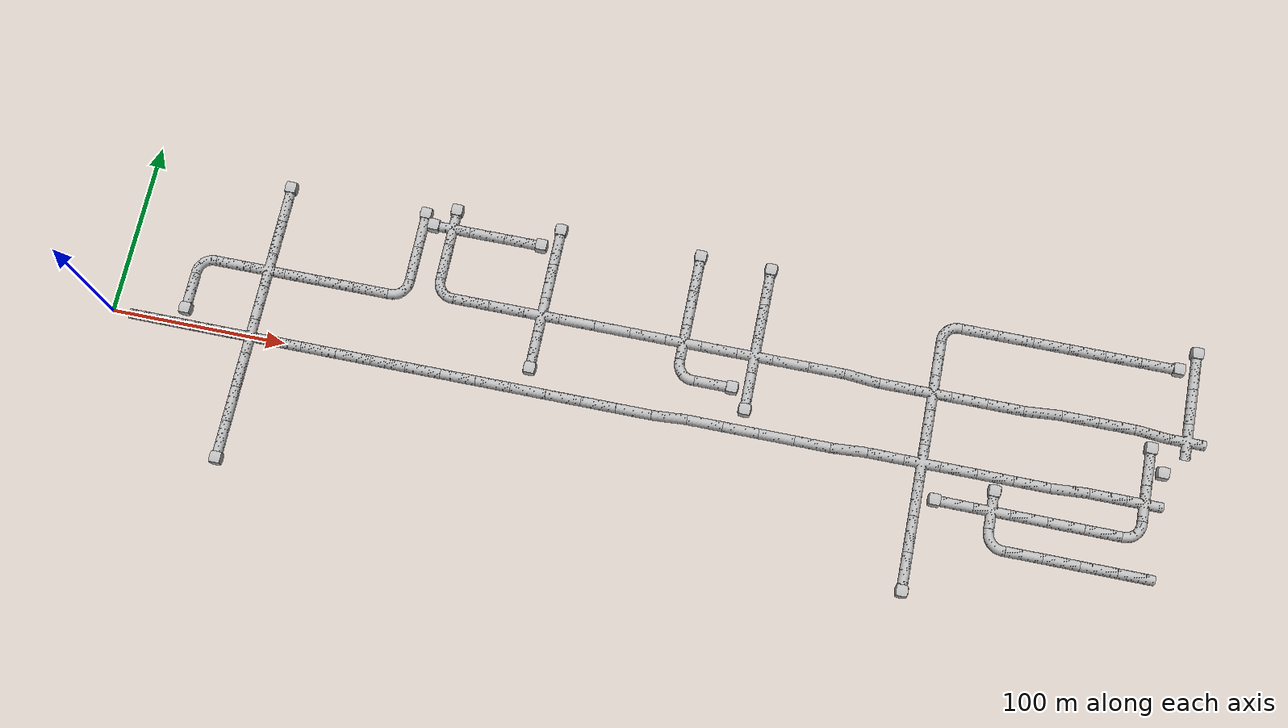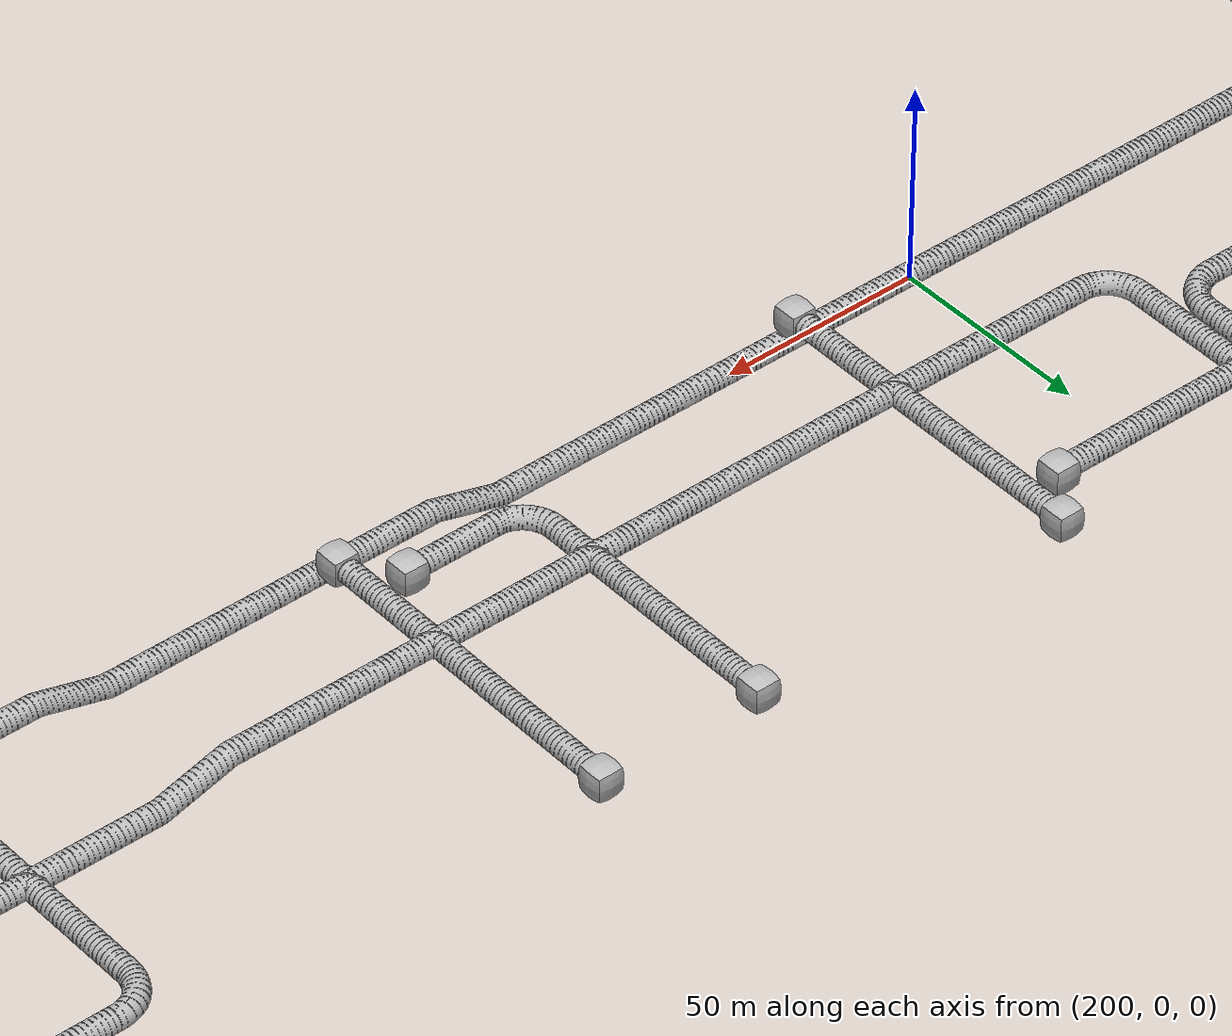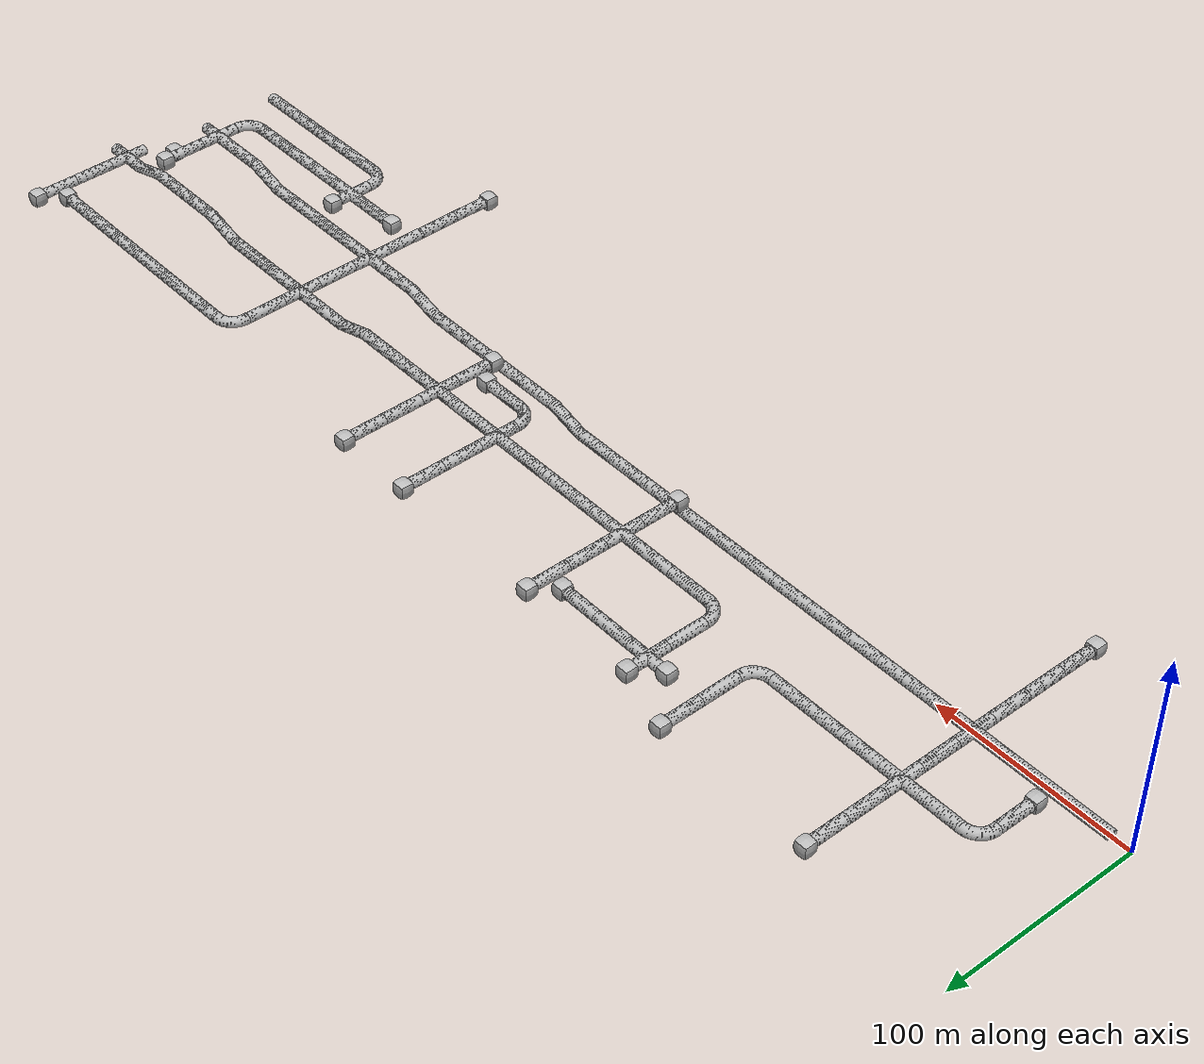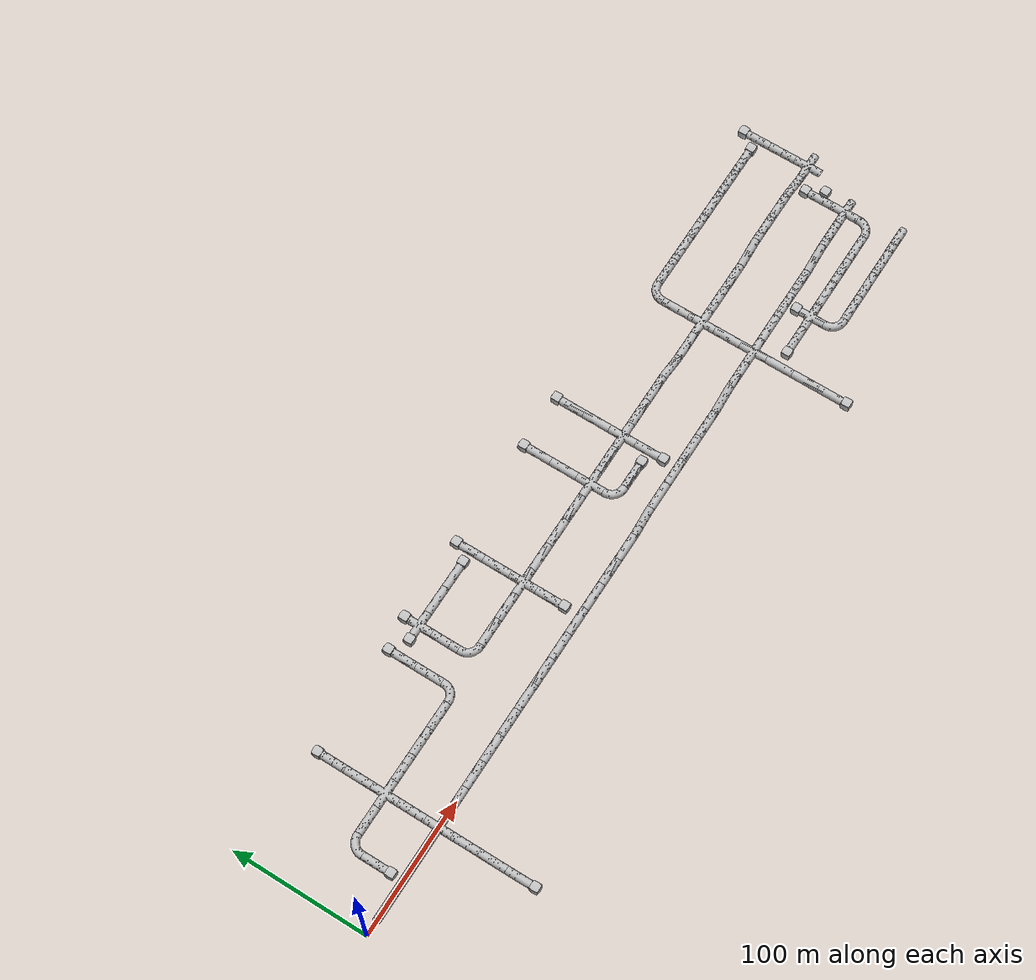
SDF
<sdf version="1.6">
 <world name="tunnel_circuit_04">
  <include><name>artifact_origin</name><pose>2 4 0.5 0 0 0</pose><uri>model://fiducial</uri></include>
  <include>
   <name>tile_1</name>
   <uri>model://tunnel_tile_5</uri>
   <pose>80.000000 80.000000 0.000000 0 0 3.141593</pose>
  </include>
  <include>
   <name>tile_2</name>
   <uri>model://tunnel_tile_blocker</uri>
   <pose>80.000000 91.000000 0.000000 0 0 0.000000</pose>
  </include>
  <include>
   <name>tile_3</name>
   <uri>model://tunnel_tile_5</uri>
   <pose>160.000000 80.000000 0.000000 0 0 3.141593</pose>
  </include>
  <include>
   <name>tile_4</name>
   <uri>model://tunnel_tile_blocker</uri>
   <pose>160.000000 91.000000 0.000000 0 0 0.000000</pose>
  </include>
  <include>
   <name>tile_5</name>
   <uri>model://tunnel_tile_1</uri>
   <pose>180.000000 80.000000 15.000000 0 0 0.000000</pose>
  </include>
  <include>
   <name>tile_6</name>
   <uri>model://tunnel_tile_blocker</uri>
   <pose>169.000000 80.000000 15.000000 0 0 0.000000</pose>
  </include>
  <include>
   <name>tile_7</name>
   <uri>model://tunnel_tile_blocker</uri>
   <pose>180.000000 91.000000 15.000000 0 0 0.000000</pose>
  </include>
  <include>
   <name>tile_8</name>
   <uri>model://tunnel_tile_5</uri>
   <pose>200.000000 80.000000 15.000000 0 0 1.570796</pose>
  </include>
  <include>
   <name>tile_9</name>
   <uri>model://tunnel_tile_5</uri>
   <pose>220.000000 80.000000 15.000000 0 0 1.570796</pose>
  </include>
  <include>
   <name>tile_10</name>
   <uri>model://tunnel_tile_blocker</uri>
   <pose>231.000000 80.000000 15.000000 0 0 0.000000</pose>
  </include>
  <include>
   <name>tile_11</name>
   <uri>model://tunnel_tile_5</uri>
   <pose>240.000000 80.000000 15.000000 0 0 3.141593</pose>
  </include>
  <include>
   <name>tile_12</name>
   <uri>model://tunnel_tile_blocker</uri>
   <pose>240.000000 91.000000 15.000000 0 0 0.000000</pose>
  </include>
  <include>
   <name>tile_13</name>
   <uri>model://tunnel_tile_5</uri>
   <pose>320.000000 80.000000 15.000000 0 0 3.141593</pose>
  </include>
  <include>
   <name>tile_14</name>
   <uri>model://tunnel_tile_blocker</uri>
   <pose>320.000000 91.000000 15.000000 0 0 0.000000</pose>
  </include>
  <include>
   <name>tile_15</name>
   <uri>model://tunnel_tile_5</uri>
   <pose>360.000000 80.000000 15.000000 0 0 3.141593</pose>
  </include>
  <include>
   <name>tile_16</name>
   <uri>model://tunnel_tile_blocker</uri>
   <pose>360.000000 91.000000 15.000000 0 0 0.000000</pose>
  </include>
  <include>
   <name>tile_17</name>
   <uri>model://tunnel_tile_2</uri>
   <pose>460.000000 80.000000 10.000000 0 0 0.000000</pose>
  </include>
  <include>
   <name>tile_18</name>
   <uri>model://tunnel_tile_5</uri>
   <pose>480.000000 80.000000 10.000000 0 0 1.570796</pose>
  </include>
  <include>
   <name>tile_19</name>
   <uri>model://tunnel_tile_5</uri>
   <pose>500.000000 80.000000 10.000000 0 0 1.570796</pose>
  </include>
  <include>
   <name>tile_20</name>
   <uri>model://tunnel_tile_5</uri>
   <pose>520.000000 80.000000 10.000000 0 0 1.570796</pose>
  </include>
  <include>
   <name>tile_21</name>
   <uri>model://tunnel_tile_5</uri>
   <pose>540.000000 80.000000 10.000000 0 0 1.570796</pose>
  </include>
  <include>
   <name>tile_22</name>
   <uri>model://tunnel_tile_5</uri>
   <pose>560.000000 80.000000 10.000000 0 0 1.570796</pose>
  </include>
  <include>
   <name>tile_23</name>
   <uri>model://tunnel_tile_5</uri>
   <pose>580.000000 80.000000 10.000000 0 0 1.570796</pose>
  </include>
  <include>
   <name>tile_24</name>
   <uri>model://tunnel_tile_blocker</uri>
   <pose>591.000000 80.000000 10.000000 0 0 0.000000</pose>
  </include>
  <include>
   <name>tile_25</name>
   <uri>model://tunnel_tile_5</uri>
   <pose>600.000000 80.000000 10.000000 0 0 3.141593</pose>
  </include>
  <include>
   <name>tile_26</name>
   <uri>model://tunnel_tile_blocker</uri>
   <pose>600.000000 91.000000 10.000000 0 0 0.000000</pose>
  </include>
  <include>
   <name>tile_37</name>
   <uri>model://tunnel_tile_5</uri>
   <pose>80.000000 60.000000 0.000000 0 0 3.141593</pose>
  </include>
  <include>
   <name>tile_38</name>
   <uri>model://tunnel_tile_5</uri>
   <pose>160.000000 60.000000 0.000000 0 0 3.141593</pose>
  </include>
  <include>
   <name>tile_39</name>
   <uri>model://tunnel_tile_5</uri>
   <pose>180.000000 60.000000 15.000000 0 0 3.141593</pose>
  </include>
  <include>
   <name>tile_40</name>
   <uri>model://tunnel_tile_5</uri>
   <pose>240.000000 60.000000 15.000000 0 0 3.141593</pose>
  </include>
  <include>
   <name>tile_41</name>
   <uri>model://tunnel_tile_5</uri>
   <pose>320.000000 60.000000 15.000000 0 0 3.141593</pose>
  </include>
  <include>
   <name>tile_42</name>
   <uri>model://tunnel_tile_5</uri>
   <pose>360.000000 60.000000 15.000000 0 0 3.141593</pose>
  </include>
  <include>
   <name>tile_43</name>
   <uri>model://tunnel_tile_5</uri>
   <pose>460.000000 60.000000 10.000000 0 0 3.141593</pose>
  </include>
  <include>
   <name>tile_44</name>
   <uri>model://tunnel_tile_5</uri>
   <pose>600.000000 60.000000 10.000000 0 0 3.141593</pose>
  </include>
  <include>
   <name>tile_92</name>
   <uri>model://tunnel_tile_2</uri>
   <pose>40.000000 40.000000 0.000000 0 0 0.000000</pose>
  </include>
  <include>
   <name>tile_93</name>
   <uri>model://tunnel_tile_5</uri>
   <pose>60.000000 40.000000 0.000000 0 0 4.712389</pose>
  </include>
  <include>
   <name>tile_94</name>
   <uri>model://tunnel_tile_1</uri>
   <pose>80.000000 40.000000 0.000000 0 0 0.000000</pose>
  </include>
  <include>
   <name>tile_95</name>
   <uri>model://tunnel_tile_5</uri>
   <pose>100.000000 40.000000 0.000000 0 0 1.570796</pose>
  </include>
  <include>
   <name>tile_96</name>
   <uri>model://tunnel_tile_5</uri>
   <pose>120.000000 40.000000 0.000000 0 0 1.570796</pose>
  </include>
  <include>
   <name>tile_97</name>
   <uri>model://tunnel_tile_5</uri>
   <pose>140.000000 40.000000 0.000000 0 0 1.570796</pose>
  </include>
  <include>
   <name>tile_98</name>
   <uri>model://tunnel_tile_2</uri>
   <pose>160.000000 40.000000 0.000000 0 0 3.141593</pose>
  </include>
  <include>
   <name>tile_99</name>
   <uri>model://tunnel_tile_2</uri>
   <pose>180.000000 40.000000 15.000000 0 0 1.570796</pose>
  </include>
  <include>
   <name>tile_100</name>
   <uri>model://tunnel_tile_5</uri>
   <pose>200.000000 40.000000 15.000000 0 0 4.712389</pose>
  </include>
  <include>
   <name>tile_101</name>
   <uri>model://tunnel_tile_5</uri>
   <pose>220.000000 40.000000 15.000000 0 0 4.712389</pose>
  </include>
  <include>
   <name>tile_102</name>
   <uri>model://tunnel_tile_1</uri>
   <pose>240.000000 40.000000 15.000000 0 0 0.000000</pose>
  </include>
  <include>
   <name>tile_103</name>
   <uri>model://tunnel_tile_5</uri>
   <pose>260.000000 40.000000 15.000000 0 0 4.712389</pose>
  </include>
  <include>
   <name>tile_104</name>
   <uri>model://tunnel_tile_5</uri>
   <pose>280.000000 40.000000 15.000000 0 0 4.712389</pose>
  </include>
  <include>
   <name>tile_105</name>
   <uri>model://tunnel_tile_5</uri>
   <pose>300.000000 40.000000 15.000000 0 0 4.712389</pose>
  </include>
  <include>
   <name>tile_106</name>
   <uri>model://tunnel_tile_1</uri>
   <pose>320.000000 40.000000 15.000000 0 0 0.000000</pose>
  </include>
  <include>
   <name>tile_107</name>
   <uri>model://tunnel_tile_5</uri>
   <pose>340.000000 40.000000 15.000000 0 0 4.712389</pose>
  </include>
  <include>
   <name>tile_108</name>
   <uri>model://tunnel_tile_1</uri>
   <pose>360.000000 40.000000 15.000000 0 0 0.000000</pose>
  </include>
  <include>
   <name>tile_109</name>
   <uri>model://tunnel_tile_5</uri>
   <pose>380.000000 40.000000 15.000000 0 0 4.712389</pose>
  </include>
  <include>
   <name>tile_110</name>
   <uri>model://tunnel_tile_5</uri>
   <pose>400.000000 40.000000 15.000000 0 0 4.712389</pose>
  </include>
  <include>
   <name>tile_111</name>
   <uri>model://tunnel_tile_6</uri>
   <pose>420.000000 40.000000 10.000000 0 0 1.570796</pose>
  </include>
  <include>
   <name>tile_112</name>
   <uri>model://tunnel_tile_5</uri>
   <pose>440.000000 40.000000 10.000000 0 0 4.712389</pose>
  </include>
  <include>
   <name>tile_113</name>
   <uri>model://tunnel_tile_1</uri>
   <pose>460.000000 40.000000 10.000000 0 0 0.000000</pose>
  </include>
  <include>
   <name>tile_114</name>
   <uri>model://tunnel_tile_5</uri>
   <pose>480.000000 40.000000 10.000000 0 0 1.570796</pose>
  </include>
  <include>
   <name>tile_115</name>
   <uri>model://tunnel_tile_5</uri>
   <pose>500.000000 40.000000 10.000000 0 0 1.570796</pose>
  </include>
  <include>
   <name>tile_116</name>
   <uri>model://tunnel_tile_6</uri>
   <pose>520.000000 40.000000 10.000000 0 0 4.712389</pose>
  </include>
  <include>
   <name>tile_117</name>
   <uri>model://tunnel_tile_5</uri>
   <pose>540.000000 40.000000 15.000000 0 0 1.570796</pose>
  </include>
  <include>
   <name>tile_118</name>
   <uri>model://tunnel_tile_5</uri>
   <pose>560.000000 40.000000 15.000000 0 0 1.570796</pose>
  </include>
  <include>
   <name>tile_119</name>
   <uri>model://tunnel_tile_6</uri>
   <pose>580.000000 40.000000 10.000000 0 0 1.570796</pose>
  </include>
  <include>
   <name>tile_120</name>
   <uri>model://tunnel_tile_1</uri>
   <pose>600.000000 40.000000 10.000000 0 0 0.000000</pose>
  </include>
  <include>
   <name>tile_148</name>
   <uri>model://tunnel_tile_5</uri>
   <pose>40.000000 20.000000 0.000000 0 0 0.000000</pose>
  </include>
  <include>
   <name>tile_149</name>
   <uri>model://tunnel_tile_blocker</uri>
   <pose>40.000000 9.000000 0.000000 0 0 0.000000</pose>
  </include>
  <include>
   <name>phone_1</name>
   <uri>model://Phone</uri>
   <pose>41.600000 15.000000 0.000000 -1.570796 0 0.436332</pose>
  </include>
  <include>
   <name>tile_150</name>
   <uri>model://tunnel_tile_5</uri>
   <pose>80.000000 20.000000 0.000000 0 0 3.141593</pose>
  </include>
  <include>
   <name>tile_151</name>
   <uri>model://tunnel_tile_5</uri>
   <pose>240.000000 20.000000 15.000000 0 0 0.000000</pose>
  </include>
  <include>
   <name>tile_152</name>
   <uri>model://tunnel_tile_blocker</uri>
   <pose>240.000000 9.000000 15.000000 0 0 0.000000</pose>
  </include>
  <include>
   <name>phone_2</name>
   <uri>model://Phone</uri>
   <pose>240.000000 17.800000 15.000000 -1.570796 0 0.000000</pose>
  </include>
  <include>
   <name>tile_153</name>
   <uri>model://tunnel_tile_2</uri>
   <pose>320.000000 20.000000 15.000000 0 0 1.570796</pose>
  </include>
  <include>
   <name>tile_154</name>
   <uri>model://tunnel_tile_5</uri>
   <pose>340.000000 20.000000 15.000000 0 0 1.570796</pose>
  </include>
  <include>
   <name>tile_155</name>
   <uri>model://tunnel_tile_blocker</uri>
   <pose>351.000000 20.000000 15.000000 0 0 0.000000</pose>
  </include>
  <include>
   <name>backpack_1</name>
   <uri>model://Backpack</uri>
   <pose>344.000000 21.000000 15.000000 0 0 -1.308997</pose>
  </include>
  <include>
   <name>tile_156</name>
   <uri>model://tunnel_tile_5</uri>
   <pose>360.000000 20.000000 15.000000 0 0 0.000000</pose>
  </include>
  <include>
   <name>tile_157</name>
   <uri>model://tunnel_tile_blocker</uri>
   <pose>360.000000 9.000000 15.000000 0 0 0.000000</pose>
  </include>
  <include>
   <name>tile_158</name>
   <uri>model://tunnel_tile_5</uri>
   <pose>460.000000 20.000000 10.000000 0 0 3.141593</pose>
  </include>
  <include>
   <name>tile_159</name>
   <uri>model://tunnel_tile_5</uri>
   <pose>580.000000 20.000000 15.000000 0 0 3.141593</pose>
  </include>
  <include>
   <name>tile_160</name>
   <uri>model://tunnel_tile_blocker</uri>
   <pose>580.000000 31.000000 15.000000 0 0 0.000000</pose>
  </include>
  <include>
   <name>tile_162</name>
   <uri>model://tunnel_tile_blocker</uri>
   <pose>589.000000 20.000000 10.000000 0 0 0.000000</pose>
  </include>
  <include>
   <name>tile_175</name>
   <uri>model://tunnel_tile_5</uri>
   <pose>20.000000 0.000000 0.000000 0 0 1.570796</pose>
  </include>
  <include>
   <name>tile_176</name>
   <uri>model://tunnel_tile_5</uri>
   <pose>40.000000 0.000000 0.000000 0 0 1.570796</pose>
  </include>
  <include>
   <name>tile_177</name>
   <uri>model://tunnel_tile_5</uri>
   <pose>60.000000 0.000000 0.000000 0 0 1.570796</pose>
  </include>
  <include>
   <name>tile_178</name>
   <uri>model://tunnel_tile_1</uri>
   <pose>80.000000 0.000000 0.000000 0 0 0.000000</pose>
  </include>
  <include>
   <name>tile_179</name>
   <uri>model://tunnel_tile_5</uri>
   <pose>100.000000 0.000000 0.000000 0 0 1.570796</pose>
  </include>
  <include>
   <name>tile_180</name>
   <uri>model://tunnel_tile_5</uri>
   <pose>120.000000 0.000000 0.000000 0 0 1.570796</pose>
  </include>
  <include>
   <name>tile_181</name>
   <uri>model://tunnel_tile_5</uri>
   <pose>140.000000 0.000000 0.000000 0 0 1.570796</pose>
  </include>
  <include>
   <name>tile_182</name>
   <uri>model://tunnel_tile_5</uri>
   <pose>160.000000 0.000000 0.000000 0 0 1.570796</pose>
  </include>
  <include>
   <name>tile_183</name>
   <uri>model://tunnel_tile_5</uri>
   <pose>180.000000 0.000000 0.000000 0 0 1.570796</pose>
  </include>
  <include>
   <name>tile_184</name>
   <uri>model://tunnel_tile_5</uri>
   <pose>200.000000 0.000000 0.000000 0 0 1.570796</pose>
  </include>
  <include>
   <name>tile_185</name>
   <uri>model://tunnel_tile_5</uri>
   <pose>220.000000 0.000000 0.000000 0 0 1.570796</pose>
  </include>
  <include>
   <name>tile_186</name>
   <uri>model://tunnel_tile_5</uri>
   <pose>240.000000 0.000000 0.000000 0 0 1.570796</pose>
  </include>
  <include>
   <name>tile_187</name>
   <uri>model://tunnel_tile_5</uri>
   <pose>260.000000 0.000000 0.000000 0 0 1.570796</pose>
  </include>
  <include>
   <name>tile_188</name>
   <uri>model://tunnel_tile_5</uri>
   <pose>280.000000 0.000000 0.000000 0 0 1.570796</pose>
  </include>
  <include>
   <name>tile_189</name>
   <uri>model://tunnel_tile_5</uri>
   <pose>300.000000 0.000000 0.000000 0 0 1.570796</pose>
  </include>
  <include>
   <name>tile_190</name>
   <uri>model://tunnel_tile_6</uri>
   <pose>320.000000 0.000000 0.000000 0 0 4.712389</pose>
  </include>
  <include>
   <name>tile_191</name>
   <uri>model://tunnel_tile_5</uri>
   <pose>340.000000 0.000000 5.000000 0 0 1.570796</pose>
  </include>
  <include>
   <name>tile_192</name>
   <uri>model://tunnel_tile_5</uri>
   <pose>360.000000 0.000000 5.000000 0 0 1.570796</pose>
  </include>
  <include>
   <name>tile_193</name>
   <uri>model://tunnel_tile_5</uri>
   <pose>380.000000 0.000000 5.000000 0 0 1.570796</pose>
  </include>
  <include>
   <name>tile_194</name>
   <uri>model://tunnel_tile_5</uri>
   <pose>400.000000 0.000000 5.000000 0 0 1.570796</pose>
  </include>
  <include>
   <name>tile_195</name>
   <uri>model://tunnel_tile_6</uri>
   <pose>420.000000 0.000000 5.000000 0 0 4.712389</pose>
  </include>
  <include>
   <name>tile_196</name>
   <uri>model://tunnel_tile_5</uri>
   <pose>440.000000 0.000000 10.000000 0 0 1.570796</pose>
  </include>
  <include>
   <name>tile_197</name>
   <uri>model://tunnel_tile_1</uri>
   <pose>460.000000 0.000000 10.000000 0 0 0.000000</pose>
  </include>
  <include>
   <name>tile_198</name>
   <uri>model://tunnel_tile_5</uri>
   <pose>480.000000 0.000000 10.000000 0 0 1.570796</pose>
  </include>
  <include>
   <name>tile_199</name>
   <uri>model://tunnel_tile_5</uri>
   <pose>500.000000 0.000000 10.000000 0 0 1.570796</pose>
  </include>
  <include>
   <name>tile_200</name>
   <uri>model://tunnel_tile_5</uri>
   <pose>520.000000 0.000000 10.000000 0 0 1.570796</pose>
  </include>
  <include>
   <name>tile_201</name>
   <uri>model://tunnel_tile_6</uri>
   <pose>540.000000 0.000000 10.000000 0 0 4.712389</pose>
  </include>
  <include>
   <name>tile_202</name>
   <uri>model://tunnel_tile_5</uri>
   <pose>560.000000 0.000000 15.000000 0 0 1.570796</pose>
  </include>
  <include>
   <name>tile_203</name>
   <uri>model://tunnel_tile_1</uri>
   <pose>580.000000 0.000000 15.000000 0 0 0.000000</pose>
  </include>
  <include>
   <name>tile_212</name>
   <uri>model://tunnel_tile_5</uri>
   <pose>80.000000 -20.000000 0.000000 0 0 0.000000</pose>
  </include>
  <include>
   <name>tile_213</name>
   <uri>model://tunnel_tile_5</uri>
   <pose>460.000000 -20.000000 10.000000 0 0 0.000000</pose>
  </include>
  <include>
   <name>tile_214</name>
   <uri>model://tunnel_tile_5</uri>
   <pose>480.000000 -20.000000 15.000000 0 0 4.712389</pose>
  </include>
  <include>
   <name>tile_215</name>
   <uri>model://tunnel_tile_blocker</uri>
   <pose>469.000000 -20.000000 15.000000 0 0 0.000000</pose>
  </include>
  <include>
   <name>tile_216</name>
   <uri>model://tunnel_tile_blocker</uri>
   <pose>469.000000 -20.000000 15.000000 0 0 0.000000</pose>
  </include>
  <include>
   <name>tile_217</name>
   <uri>model://tunnel_tile_1</uri>
   <pose>500.000000 -20.000000 15.000000 0 0 0.000000</pose>
  </include>
  <include>
   <name>tile_218</name>
   <uri>model://tunnel_tile_blocker</uri>
   <pose>500.000000 -9.000000 15.000000 0 0 0.000000</pose>
  </include>
  <include>
   <name>backpack_3</name>
   <uri>model://Backpack</uri>
   <pose>500.500000 -13.300000 15.000000 0 0 0.174533</pose>
  </include>
  <include>
   <name>tile_219</name>
   <uri>model://tunnel_tile_5</uri>
   <pose>520.000000 -20.000000 15.000000 0 0 4.712389</pose>
  </include>
  <include>
   <name>tile_220</name>
   <uri>model://tunnel_tile_5</uri>
   <pose>540.000000 -20.000000 15.000000 0 0 4.712389</pose>
  </include>
  <include>
   <name>tile_221</name>
   <uri>model://tunnel_tile_5</uri>
   <pose>560.000000 -20.000000 15.000000 0 0 4.712389</pose>
  </include>
  <include>
   <name>tile_222</name>
   <uri>model://tunnel_tile_2</uri>
   <pose>580.000000 -20.000000 15.000000 0 0 3.141593</pose>
  </include>
  <include>
   <name>tile_228</name>
   <uri>model://tunnel_tile_5</uri>
   <pose>80.000000 -40.000000 0.000000 0 0 0.000000</pose>
  </include>
  <include>
   <name>tile_229</name>
   <uri>model://tunnel_tile_5</uri>
   <pose>460.000000 -40.000000 10.000000 0 0 0.000000</pose>
  </include>
  <include>
   <name>tile_230</name>
   <uri>model://tunnel_tile_2</uri>
   <pose>500.000000 -40.000000 15.000000 0 0 1.570796</pose>
  </include>
  <include>
   <name>tile_231</name>
   <uri>model://tunnel_tile_5</uri>
   <pose>520.000000 -40.000000 15.000000 0 0 1.570796</pose>
  </include>
  <include>
   <name>tile_232</name>
   <uri>model://tunnel_tile_5</uri>
   <pose>540.000000 -40.000000 15.000000 0 0 1.570796</pose>
  </include>
  <include>
   <name>tile_233</name>
   <uri>model://tunnel_tile_5</uri>
   <pose>560.000000 -40.000000 15.000000 0 0 1.570796</pose>
  </include>
  <include>
   <name>tile_234</name>
   <uri>model://tunnel_tile_5</uri>
   <pose>580.000000 -40.000000 15.000000 0 0 1.570796</pose>
  </include>
  <include>
   <name>tile_241</name>
   <uri>model://tunnel_tile_5</uri>
   <pose>80.000000 -60.000000 0.000000 0 0 0.000000</pose>
  </include>
  <include>
   <name>tile_242</name>
   <uri>model://tunnel_tile_blocker</uri>
   <pose>80.000000 -71.000000 0.000000 0 0 0.000000</pose>
  </include>
  <include>
   <name>extinguisher_3</name>
   <uri>model://Extinguisher</uri>
   <pose>80.000000 -66.000000 0.050000 0 0 0.000000</pose>
  </include>
  <include>
   <name>tile_243</name>
   <uri>model://tunnel_tile_5</uri>
   <pose>460.000000 -60.000000 10.000000 0 0 0.000000</pose>
  </include>
  <include>
   <name>tile_244</name>
   <uri>model://tunnel_tile_blocker</uri>
   <pose>460.000000 -71.000000 10.000000 0 0 0.000000</pose>
  </include>
  <include>
   <name>backpack_4</name>
   <uri>model://Backpack</uri>
   <pose>461.000000 -65.600000 10.150000 0 0 -2.094395</pose>
  </include>
 </world>
</sdf>
